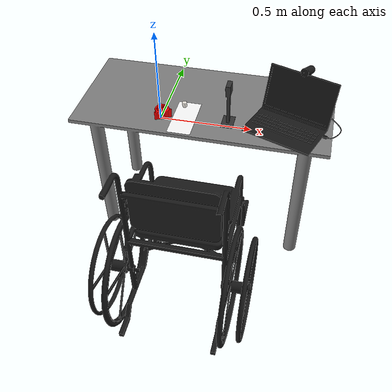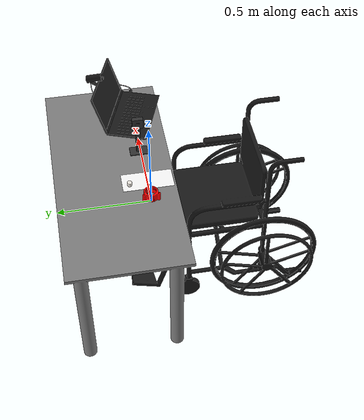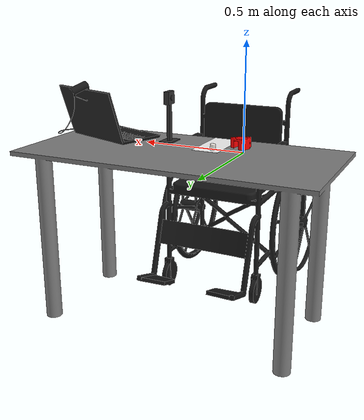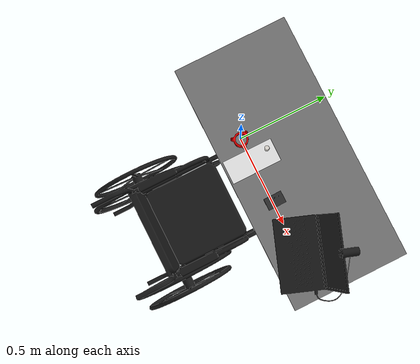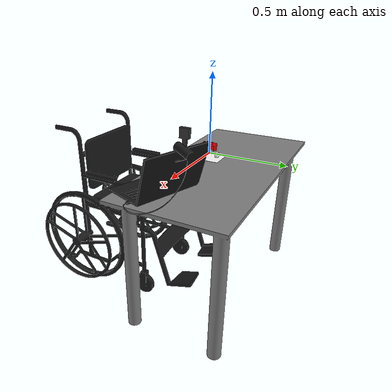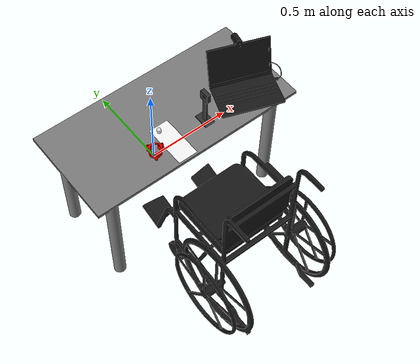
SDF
<sdf version='1.10'>
  <world name='empty'>
    <physics name='1ms' type='ignored'>
      <max_step_size>0.005</max_step_size>
      <real_time_factor>1</real_time_factor>
      <real_time_update_rate>500</real_time_update_rate>
    </physics>
    <plugin name='gz::sim::systems::Physics' filename='gz-sim-physics-system'/>
    <plugin name='gz::sim::systems::UserCommands' filename='gz-sim-user-commands-system'/>
    <plugin name='gz::sim::systems::SceneBroadcaster' filename='gz-sim-scene-broadcaster-system'/>
    <plugin name='gz::sim::systems::Contact' filename='gz-sim-contact-system'/>
    <plugin name='gz::sim::systems::Sensors' filename='gz-sim-sensors-system'>
      <render_engine>ogre2</render_engine>
    </plugin>
    <gravity>0 0 -9.8000000000000007</gravity>
    <magnetic_field>5.5644999999999998e-06 2.2875799999999999e-05 -4.2388400000000002e-05</magnetic_field>
    <atmosphere type='adiabatic'/>
    <scene>
      <ambient>0.400000006 0.400000006 0.400000006 1</ambient>
      <background>0.699999988 0.699999988 0.699999988 1</background>
      <shadows>true</shadows>
    </scene>
    <model name='ground_plane'>
      <static>true</static>
      <link name='link'>
        <collision name='collision'>
          <geometry>
            <plane>
              <normal>0 0 1</normal>
              <size>100 100</size>
            </plane>
          </geometry>
          <surface>
            <friction>
              <ode/>
            </friction>
            <bounce/>
            <contact/>
          </surface>
        </collision>

        <pose>0 0 0 0 0 0</pose>
        <inertial>
          <pose>0 0 0 0 0 0</pose>
          <mass>1</mass>
          <inertia>
            <ixx>1</ixx>
            <ixy>0</ixy>
            <ixz>0</ixz>
            <iyy>1</iyy>
            <iyz>0</iyz>
            <izz>1</izz>
          </inertia>
        </inertial>
        <enable_wind>false</enable_wind>
      </link>
      <pose>0 0 0 0 0 0</pose>
      <self_collide>false</self_collide>
    </model>

    <model name="checkerboard">
      <static>true</static>
      <pose>0.135 0.0 0.0225 0 0 0</pose>

      <link name="checkerboard_link">

        <visual name="visual">
          <geometry>
            <plane>
              <normal>0 0 1</normal>
              <size>0.127 0.2794</size>
            </plane>
          </geometry>

          <material>
            <ambient>1 1 1 1</ambient>
            <diffuse>1 1 1 1</diffuse>
            <specular>1 1 1 1</specular>
            <pbr>
              <metal>
                <albedo_map>
                  file:///root/ros2_ws/src/open_manipulator/open_manipulator_bringup/worlds/checkerboard_texture.png
                </albedo_map>
              </metal>
            </pbr>
          </material>

        </visual>

      </link>
    </model>

    <model name="laptop/camera">
      <static>true</static>
      <pose>0.675 0.0 0.02 0 0 -0.35</pose>

      <link name="laptop_link">

        <visual name="visual">
          <geometry>
            <mesh>
              <uri>file:///root/ros2_ws/src/open_manipulator/open_manipulator_bringup/worlds/laptop_camera.stl</uri>
              <scale>0.001 0.001 0.001</scale>
            </mesh>
          </geometry>
          <material>
            <ambient>0 0 0 1</ambient>
            <diffuse>0.1 0.1 0.1 1</diffuse>
            <specular>0.1 0.1 0.1 1</specular>
          </material>
        </visual>

      </link>

        </model>

    <model name="overhead camera">
      <static>true</static>
      <pose>0.25 0.15 -0.015 0 0 1.5708</pose>

      <link name="overheadcam_link">

        <visual name="visual">
          <geometry>
            <mesh>
              <uri>file:///root/ros2_ws/src/open_manipulator/open_manipulator_bringup/worlds/overheadcam.stl</uri>
              <scale>0.001 0.001 0.001</scale>
            </mesh>
          </geometry>
          <material>
            <ambient>0 0 0 1</ambient>
            <diffuse>0.2 0.2 0.2 1</diffuse>
            <specular>0.1 0.1 0.1 1</specular>
          </material>
        </visual>

      </link>

    </model>

    <model name="table">
      <static>true</static>
      <pose>0.225 0.1 0 0 0 0</pose>

      <link name="table_link">

        <visual name="visual">
          <geometry>
            <mesh>
              <uri>file:///root/ros2_ws/src/open_manipulator/open_manipulator_bringup/worlds/table.stl</uri>
              <scale>0.001 0.001 0.001</scale>
            </mesh>
          </geometry>
          <material>
            <ambient>0.3 0.3 0.3 1</ambient>
            <diffuse>0.5 0.5 0.5 1</diffuse>
            <specular>0.1 0.1 0.1 1</specular>
          </material>
        </visual>

      </link>
    </model>

    <model name="wheelchair">
      <static>true</static>

      <pose>2.05 -4.95 -0.85 1.57 0 1.57</pose>

      <link name="wheelchair_link">

        <visual name="visual">
          <geometry>
            <mesh>
              <uri>file:///root/ros2_ws/src/open_manipulator/open_manipulator_bringup/worlds/wheelchair.stl</uri>
              <scale>0.001 0.001 0.001</scale>
            </mesh>
          </geometry>
          <material>
            <ambient>0 0 0 1</ambient>
            <diffuse>0.1 0.1 0.1 1</diffuse>
            <specular>0 0 0 1</specular>
          </material>
        </visual>

      </link>
    </model>

    <model name="marshmallow">
      <static>true</static>

      <pose>0.075 0.087 -0.003 0 0 0</pose>

      <link name="marshmallow_link">

        <visual name="visual">
          <geometry>
            <mesh>
              <uri>file:///root/ros2_ws/src/open_manipulator/open_manipulator_bringup/worlds/marshmallow.stl</uri>
              <scale>0.001 0.001 0.001</scale>
            </mesh>
          </geometry>
          <material>
            <ambient>1.0 0.98 0.95 1</ambient>
            <diffuse>0.95 0.93 0.90 1</diffuse>
            <specular>0.03 0.03 0.03 1</specular>
          </material>
        </visual>

      </link>
    </model>

    <model name="robot_base">
      <static>true</static>

      <pose>-0.101 .104 0 0 0 -0.5235</pose>

      <link name="robotbase_link">

        <visual name="visual">
          <geometry>
            <mesh>
              <uri>file:///root/ros2_ws/src/open_manipulator/open_manipulator_bringup/worlds/robotbase.stl</uri>
              <scale>0.001 0.001 0.001</scale>
            </mesh>
          </geometry>
          <material>
            <ambient>1.0 0.0 0.0 1</ambient>
            <diffuse>1.0 0.0 0.0 1</diffuse>
            <specular>0.1 0.1 0.1 1</specular>
          </material>
        </visual>

      </link>
    </model>

    <model name="cam1">
      <static>true</static>
      <pose>0.135 -0.001 1.3 0 1.5708 1.5708</pose>
      <link name="link">
        <sensor name="camera1" type="camera">
          <always_on>true</always_on>
          <update_rate>30</update_rate>
          <topic>/cam1/image</topic>
          <camera>
            <horizontal_fov>0.1</horizontal_fov>
            <image>
              <width>292</width>
              <height>640</height>
              <format>R8G8B8</format>
            </image>
            <clip>
              <near>0.01</near>
              <far>100</far>
            </clip>
          </camera>
          <visualize>true</visualize>
        </sensor>
      </link>
    </model>

    <model name="cam2">
      <static>true</static>
      <pose>0 -1 1 0 0.5 1.57</pose>
      <link name="link">
        <sensor name="camera2" type="camera">
          <always_on>true</always_on>
          <update_rate>30</update_rate>
          <topic>/cam2/image</topic>
          <camera>
            <horizontal_fov>1.047</horizontal_fov>
            <image>
              <width>640</width>
              <height>480</height>
              <format>R8G8B8</format>
            </image>
            <clip>
              <near>0.01</near>
              <far>100</far>
            </clip>
          </camera>
          <visualize>true</visualize>
        </sensor>
      </link>
    </model>

<gui>
  <camera name="user_camera">
    <pose>0 0 2 0 -1.57 0</pose>
  </camera>
</gui>

    <light name='sun' type='directional'>
      <pose>0 0 10 0 0 0</pose>
      <cast_shadows>true</cast_shadows>
      <intensity>1</intensity>
      <direction>-0.5 0.1 -0.9</direction>
      <diffuse>0.800000012 0.800000012 0.800000012 1</diffuse>
      <specular>0.200000003 0.200000003 0.200000003 1</specular>
      <attenuation>
        <range>1000</range>
        <linear>0.01</linear>
        <constant>0.90000000000000002</constant>
        <quadratic>0.001</quadratic>
      </attenuation>
      <spot>
        <inner_angle>0</inner_angle>
        <outer_angle>0</outer_angle>
        <falloff>0</falloff>
      </spot>
    </light>

  </world>
</sdf>
